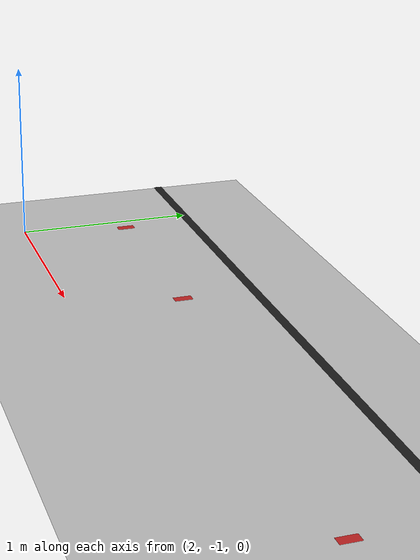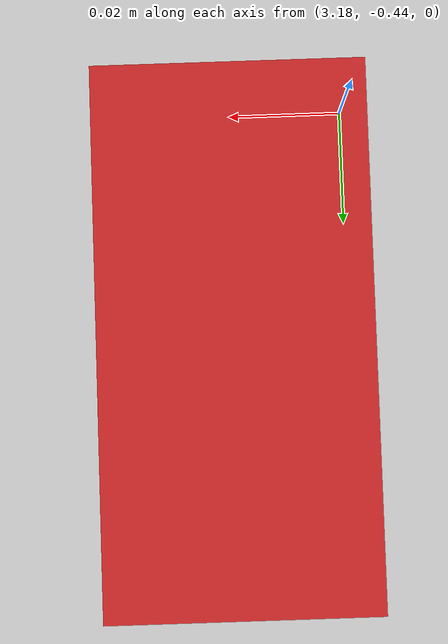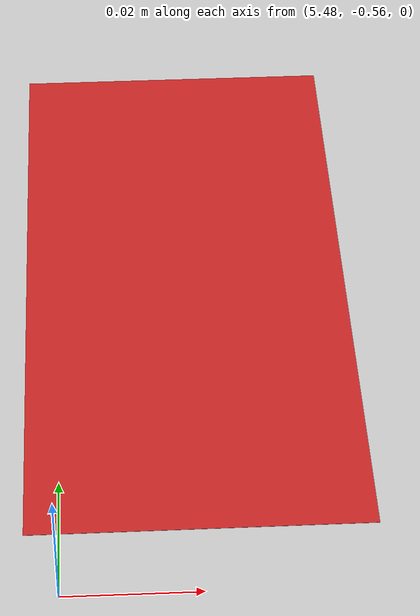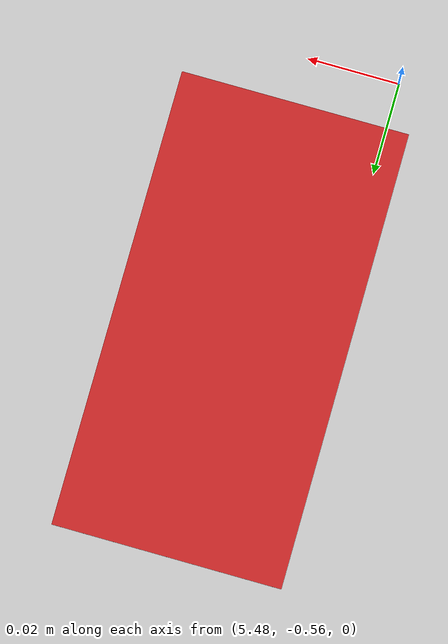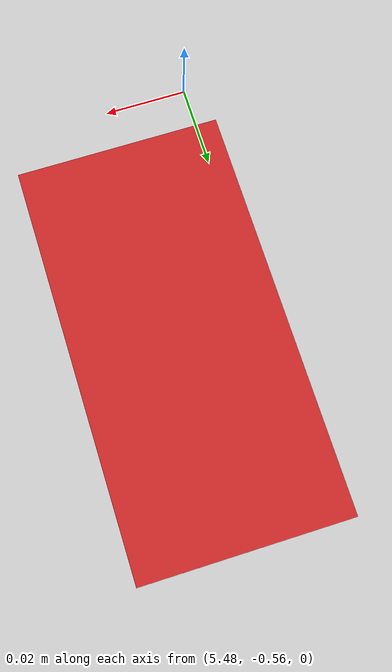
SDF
<sdf version="1.6">
 <world name="default">
  <light name="sun" type="directional">
   <pose>0 0 10 0 -0 0</pose>
   <diffuse>0.8 0.8 0.8 1</diffuse>
   <specular>0.1 0.1 0.1 1</specular>
   <attenuation>
    <range>1000</range>
    <constant>0.9</constant>
    <linear>0.01</linear>
    <quadratic>0.001</quadratic>
   </attenuation>
   <direction>-0.5 0.5 -1</direction>
  </light>
  <model name="ground_plane">
   <static>1</static>
   <link name="link">
    <collision name="collision">
     <geometry><plane><normal>0 0 1</normal><size>100 100</size></plane></geometry>
     <surface><friction><ode><mu>100</mu><mu2>50</mu2></ode></friction></surface>
    </collision>
    <visual name="visual">
     <cast_shadows>0</cast_shadows>
     <geometry><plane><normal>0 0 1</normal><size>100 120</size></plane></geometry>
     <material>
      <script><uri>file://media/materials/scripts/gazebo.material</uri><name>Gazebo/Grey</name></script>
     </material>
    </visual>
   </link>
  </model>
  <gravity>0 0 -9.8</gravity>
  <magnetic_field>6e-06 2.3e-05 -4.2e-05</magnetic_field>
  <atmosphere type="adiabatic"/>
  <physics name="default_physics" default="0" type="ode">
   <max_step_size>0.001</max_step_size>
   <real_time_factor>1</real_time_factor>
   <real_time_update_rate>1000</real_time_update_rate>
  </physics>
  <scene>
   <ambient>0.9 0.9 0.9 1</ambient>
   <background>0.7 0.7 0.7 1</background>
   <shadows>1</shadows>
   <grid>0</grid>
  </scene>
  <spherical_coordinates>
   <surface_model>EARTH_WGS84</surface_model>
   <latitude_deg>0</latitude_deg>
   <longitude_deg>0</longitude_deg>
   <elevation>0</elevation>
   <heading_deg>0</heading_deg>
  </spherical_coordinates>
  <model name="black marker">
   <static>1</static>
   <link name="link_ground">
    <collision name="collision">
     <geometry><plane><normal>0 0 1</normal><size>10 0.05</size></plane></geometry>
     <surface><friction><ode><mu>100</mu><mu2>50</mu2></ode></friction></surface>
    </collision>
    <visual name="visual_ground">
     <cast_shadows>0</cast_shadows>
     <geometry><plane><normal>0 0 1</normal><size>10 0.05</size></plane></geometry>
     <material>
      <script><uri>file://media/materials/scripts/gazebo.material</uri><name>Gazebo/Black</name></script>
     </material>
    </visual>
   </link>
   <pose>3 0 0.001 0 -0 0</pose>
  </model>
  <model name="marker1">
   <static>1</static>
   <link name="link_ground">
    <collision name="collision">
     <geometry><plane><normal>0 0 1</normal><size>0.05 0.1</size></plane></geometry>
     <surface><friction><ode><mu>100</mu><mu2>50</mu2></ode></friction></surface>
    </collision>
    <visual name="visual_ground">
     <cast_shadows>0</cast_shadows>
     <geometry><plane><normal>0 0 1</normal><size>0.05 0.1</size></plane></geometry>
     <material>
      <script><uri>file://media/materials/scripts/gazebo.material</uri><name>Gazebo/Red</name></script>
     </material>
    </visual>
   </link>
   <pose>2.1 -0.4 0.001 0 -0 0</pose>
  </model>
  <model name="marker2">
   <static>1</static>
   <link name="link_ground">
    <collision name="collision">
     <geometry><plane><normal>0 0 1</normal><size>0.05 0.1</size></plane></geometry>
     <surface><friction><ode><mu>100</mu><mu2>50</mu2></ode></friction></surface>
    </collision>
    <visual name="visual_ground">
     <cast_shadows>0</cast_shadows>
     <geometry><plane><normal>0 0 1</normal><size>0.05 0.1</size></plane></geometry>
     <material>
      <script><uri>file://media/materials/scripts/gazebo.material</uri><name>Gazebo/Red</name></script>
     </material>
    </visual>
   </link>
   <pose>3.2 -0.4 0.001 0 -0 0</pose>
  </model>
  <model name="marker3">
   <static>1</static>
   <link name="link_ground">
    <collision name="collision">
     <geometry><plane><normal>0 0 1</normal><size>0.05 0.1</size></plane></geometry>
     <surface><friction><ode><mu>100</mu><mu2>50</mu2></ode></friction></surface>
    </collision>
    <visual name="visual_ground">
     <cast_shadows>0</cast_shadows>
     <geometry><plane><normal>0 0 1</normal><size>0.05 0.1</size></plane></geometry>
     <material>
      <script><uri>file://media/materials/scripts/gazebo.material</uri><name>Gazebo/Red</name></script>
     </material>
    </visual>
   </link>
   <pose>5.5 -0.5 0.001 0 -0 0</pose>
  </model>
 </world>
</sdf>
